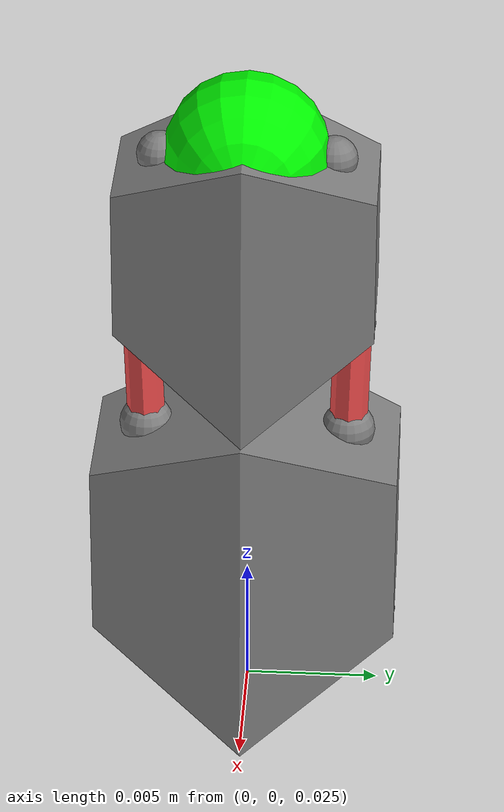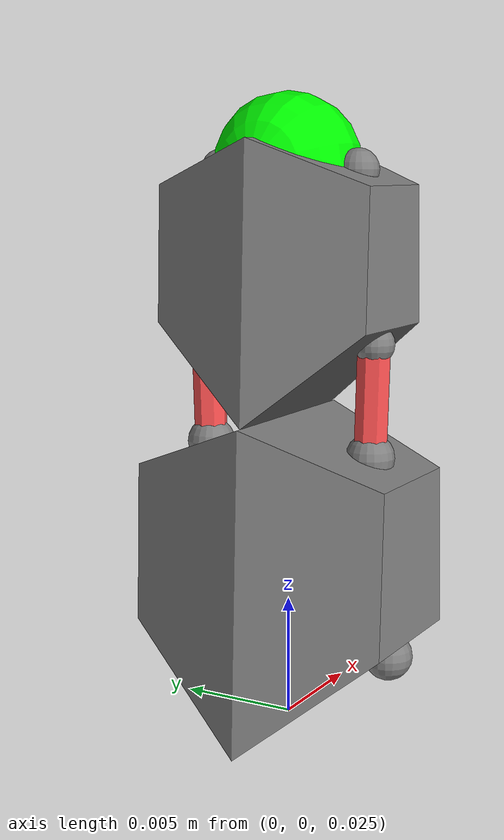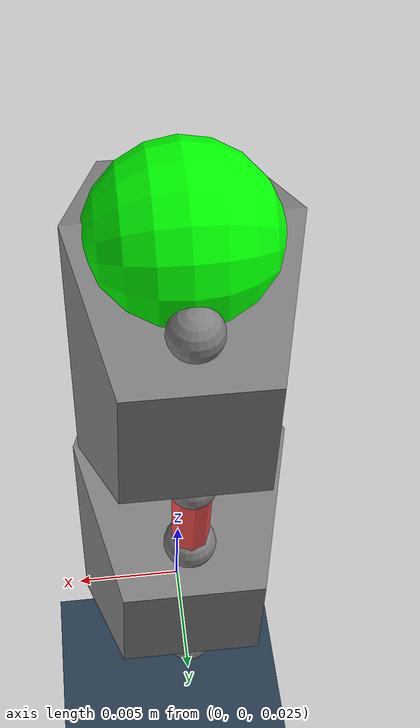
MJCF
<mujoco model="spiral_robot">
  <compiler angle="radian"/>
  <option gravity="0 0 0"/>
  <asset>
    <mesh name="baselink_1" file="baselink.stl" scale="0.001000000 0.001000000 0.001000000"/>
    <mesh name="baselink_2" file="baselink.stl" scale="0.000831332 0.000831332 0.000831332"/>
    <texture name="texplane" type="2d" builtin="checker" rgb1=".2 .3 .4" rgb2=".1 0.15 0.2" width="512" height="512" mark="cross" markrgb=".8 .8 .8"/>
    <material name="matplane" reflectance="0.3" texture="texplane" texrepeat="1 1" texuniform="true"/>
  </asset>
  <worldbody>
    <geom name="ground" type="plane" size="10 10 1" pos="0 0 0" quat="1 0 0 0" material="matplane" condim="1"/>
    <light pos="1 0.5 0.7" dir="-1 -0.5 -1" directional="true" castshadow="false" diffuse="1 1 1" specular="0.3 0.3 0.3"/>
    <body name="link1" pos="0 0 0.024503260">
      <geom type="mesh" mesh="baselink_1"/>
      <site name="s1_1" pos="0.000000000 0.004656979 0.003779724" size="0.001000 0.001000 0.001000"/>
      <site name="s1_2" pos="0.000000000 0.003746046 0.011946820" size="0.001000 0.001000 0.001000"/>
      <site name="s1_3" pos="0.000000000 -0.004656979 0.003779724" size="0.001000 0.001000 0.001000"/>
      <site name="s1_4" pos="0.000000000 -0.003746046 0.011946820" size="0.001000 0.001000 0.001000"/>
      <body name="link2" pos="0 0 0.013380018">
        <joint type="hinge" axis="1 0 0" range="-1.047197551 1.047197551" stiffness="0.010000" damping="0.010000"/>
        <geom type="mesh" mesh="baselink_2"/>
        <site name="s2_1" pos="0.000000000 0.003871498 0.003142206" size="0.000831 0.000831 0.000831"/>
        <site name="s2_2" pos="0.000000000 0.003114209 0.009931778" size="0.000831 0.000831 0.000831"/>
        <site name="s2_3" pos="0.000000000 -0.003871498 0.003142206" size="0.000831 0.000831 0.000831"/>
        <site name="s2_4" pos="0.000000000 -0.003114209 0.009931778" size="0.000831 0.000831 0.000831"/>
        <site name="marker_2"
          type="sphere"
          pos="0 0 0.01"
          euler="0 1.57079632679 0"
          size="0.003"
          rgba="0 1 0 1"/>
      </body>
    </body>
  </worldbody>
  <tendon>
    <spatial name="tendon1" width="0.0007" frictionloss="0.1" rgba=".95 .3 .3 1" limited="true" range="0.009801304 0.061258150">
      <site site="s1_1"/>
      <site site="s1_2"/>
      <site site="s2_1"/>
      <site site="s2_2"/>
    </spatial>
    <spatial name="tendon2" width="0.0007" frictionloss="0.1" rgba=".95 .3 .3 1" limited="true" range="0.009801304 0.061258150">
      <site site="s1_3"/>
      <site site="s1_4"/>
      <site site="s2_3"/>
      <site site="s2_4"/>
    </spatial>
  </tendon>
  <actuator>
    <position name="act1" tendon="tendon1" kp="5.0" ctrllimited="true" ctrlrange="-1 0.5" lengthrange="0.185632848 1.160205301"/>
    <position name="act2" tendon="tendon2" kp="5.0" ctrllimited="true" ctrlrange="-1 0.5"  lengthrange="0.185632848 1.160205301" />
  </actuator>
</mujoco>
